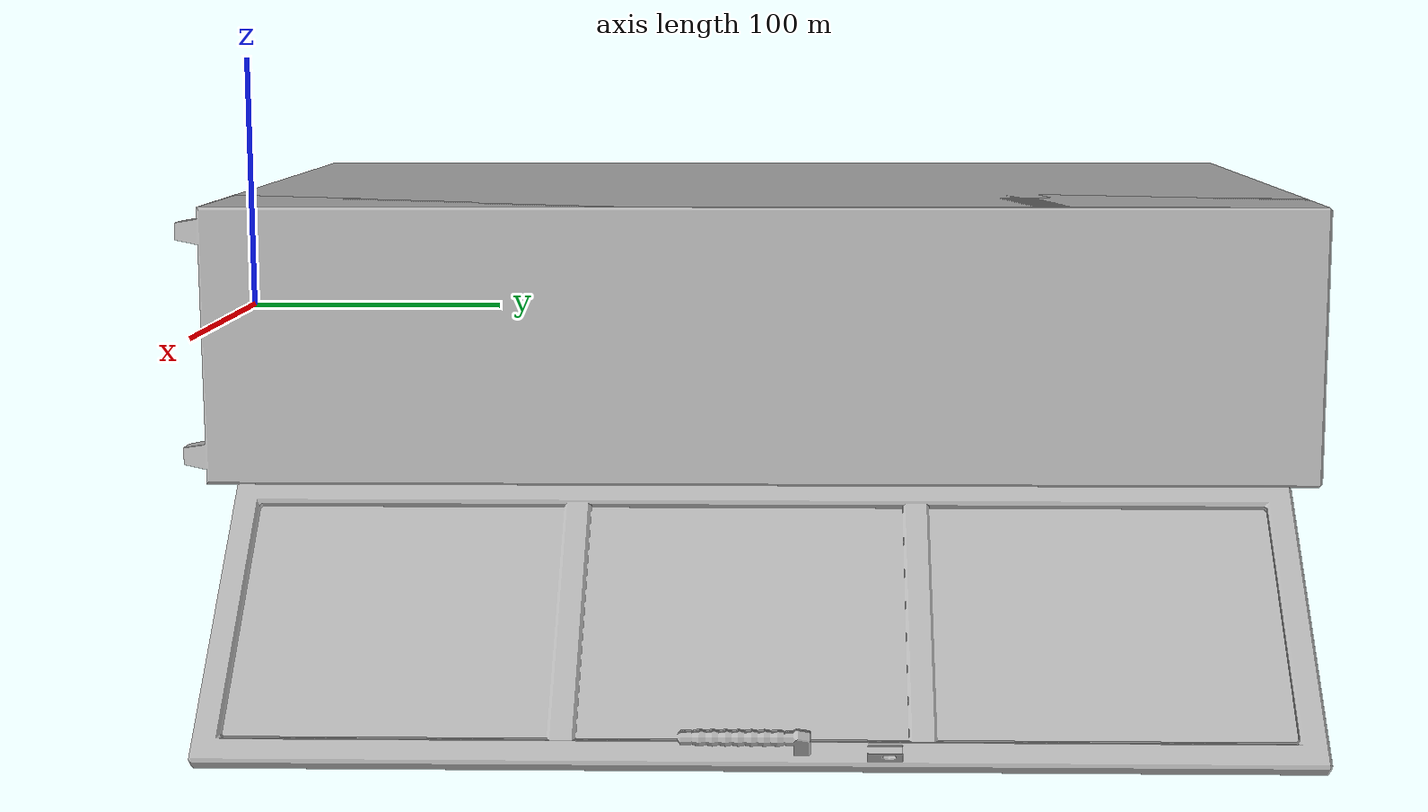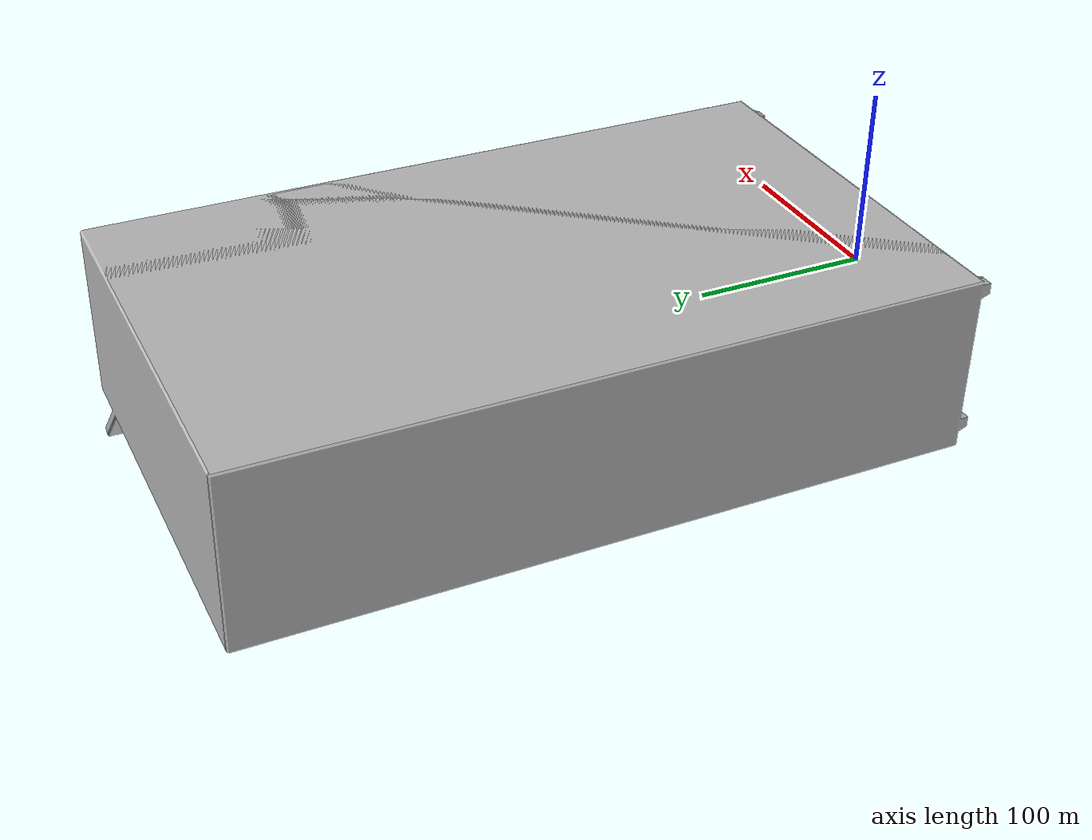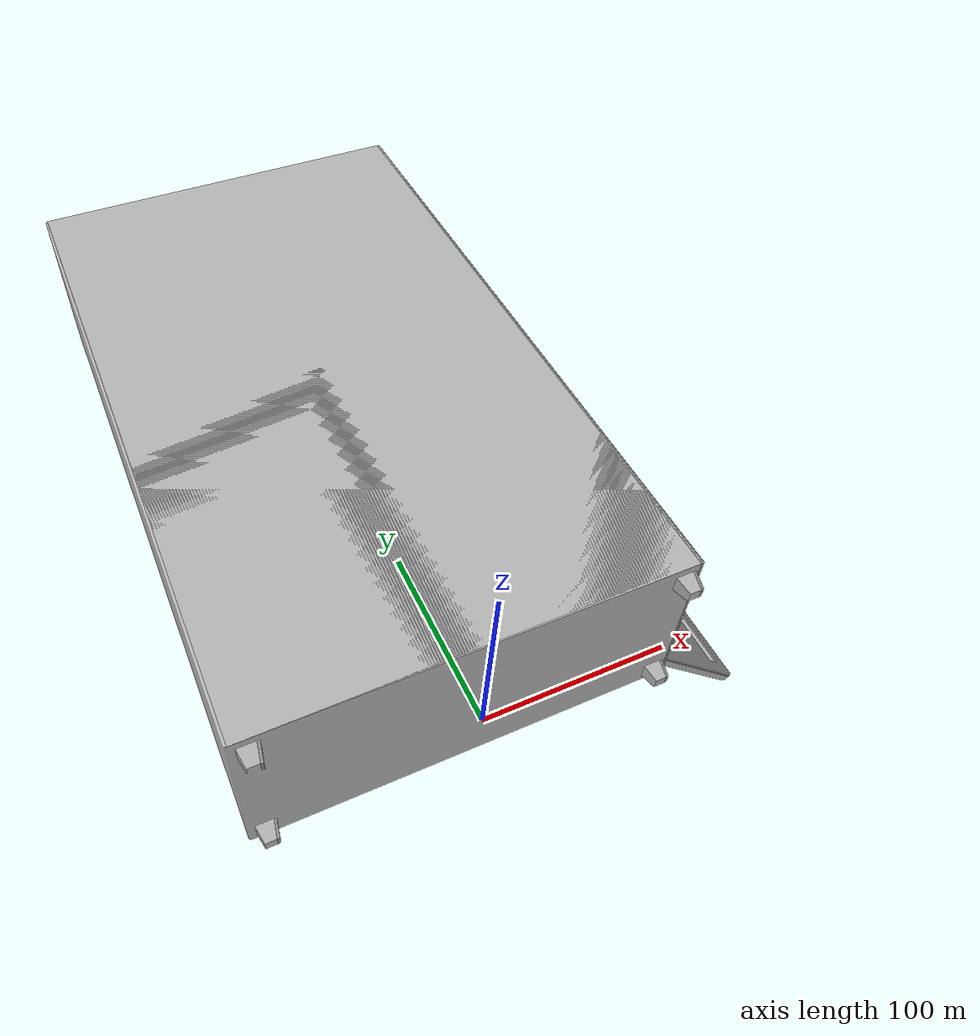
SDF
<?xml version="1.0" ?>
<sdf version="1.5">
  <model name="weaponlocker_add">

	<include>
      <name>locker1</name>
      <pose>0 0 0 0 0 0</pose>
      <uri>model://locker_add</uri>
    </include>
	<include>
      <name>locker2</name>
      <pose>1.2 0 0 0 0 0</pose>
      <uri>model://locker_add</uri>
    </include>
  <include>
      <name>w1</name>
      <pose>0 0 0 0 0 0</pose>
      <uri>model://weapon_add</uri>
    </include>
    <include>
      <name>w2</name>
      <pose>-0.2 0 0 0 0 0</pose>
      <uri>model://weapon_add</uri>
    </include>
    <include>
      <name>w3</name>
      <pose>-0.4 0 0 0 0 0</pose>
      <uri>model://weapon_add</uri>
    </include>
    <include>
      <name>w4</name>
      <pose>1.2 0 0 0 0 0</pose>
      <uri>model://weapon_add</uri>
    </include>
    <include>
      <name>w5</name>
      <pose>1.0 0 0 0 0 0</pose>
      <uri>model://weapon_add</uri>
    </include>
    <include>
      <name>w6</name>
      <pose>0.8 0 0 0 0 0</pose>
      <uri>model://weapon_add</uri>
    </include>

  </model>
</sdf>

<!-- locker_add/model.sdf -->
<sdf version='1.5'>
  <model name='locker_add'>
    <static>true</static>
      <link name='locker_add'>
        <pose frame=''>0 0 0 1.57 0 0</pose>
         <collision name='locker_add'>
          <geometry>
            <mesh>
              <scale>0.01 0.01 0.01</scale>
              <uri>model://locker_add/model.dae</uri>
            </mesh>
          </geometry>
          <max_contacts>10</max_contacts>
        </collision>
        <visual name='locker_add'>
        <cast_shadows>false</cast_shadows>
          <geometry>
            <mesh>
              <scale>0.01 0.01 0.01</scale>
              <uri>model://locker_add/model.dae</uri>
            </mesh>
          </geometry>
          <material>
            <script>
              <name>locker_add</name>
              <uri>model://locker_add/model.dae</uri>
            </script>
          </material>
        </visual>
      </link>
  </model>
</sdf>

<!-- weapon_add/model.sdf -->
<sdf version='1.5'>
  <model name='weapon_add'>
    <static>true</static>
      <link name='weapon_add'>
        <pose frame=''>0 0 1.1 3.14 0 3.14</pose>
         <collision name='weapon_add'>
          <geometry>
            <mesh>
              <scale>2 2 2</scale>
              <uri>model://weapon_add/model.dae</uri>
            </mesh>
          </geometry>
          <max_contacts>10</max_contacts>
        </collision>
        <visual name='weapon_add'>
        <cast_shadows>false</cast_shadows>
          <geometry>
            <mesh>
              <scale>2 2 2</scale>
              <uri>model://weapon_add/model.dae</uri>
            </mesh>
          </geometry>
          <material>
            <script>
              <name>weapon_add</name>
              <uri>model://weapon_add/model.dae</uri>
            </script>
          </material>
        </visual>
      </link>
  </model>
</sdf>
